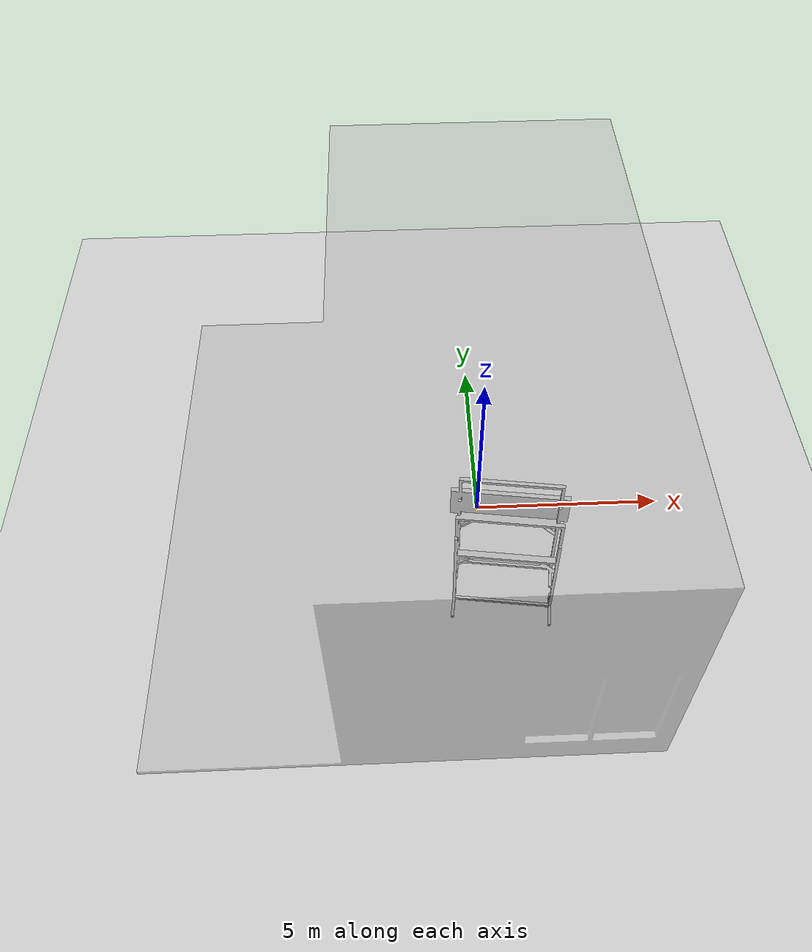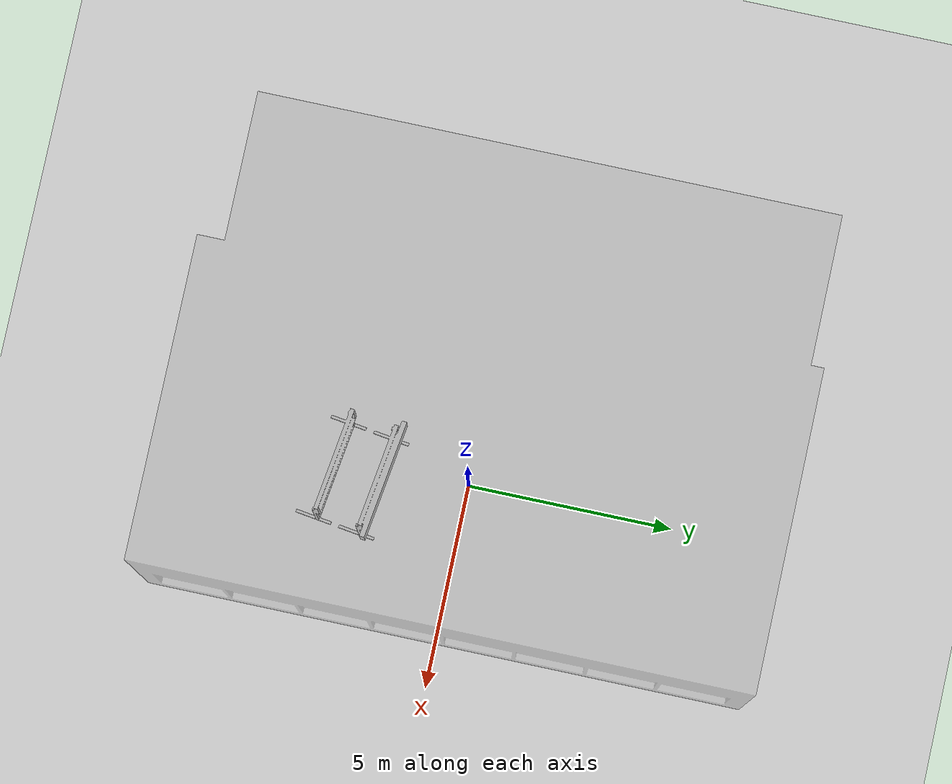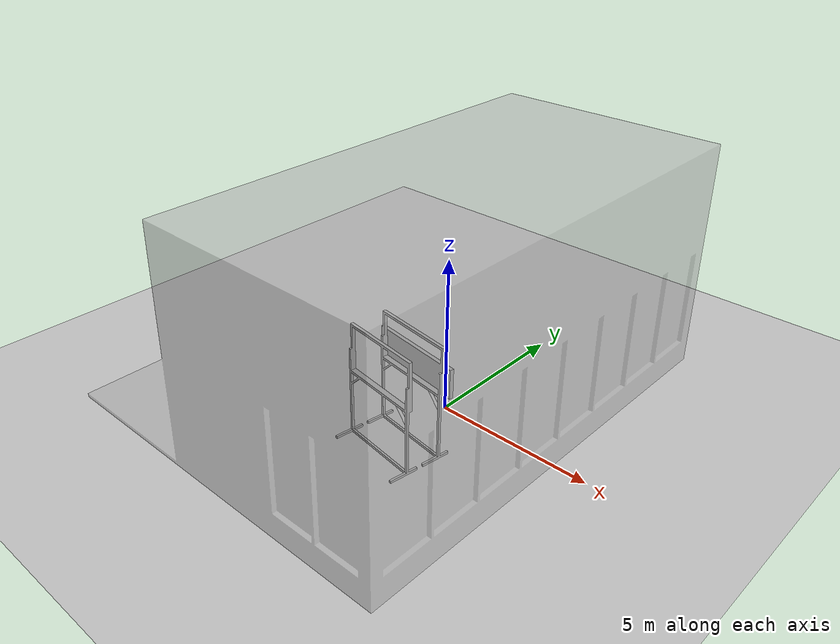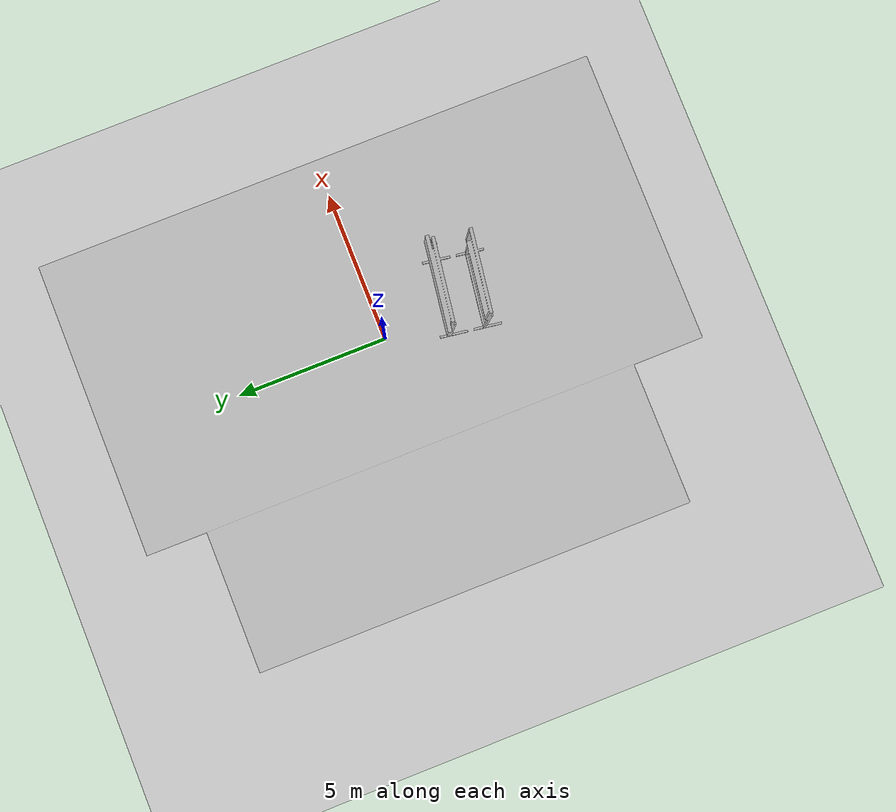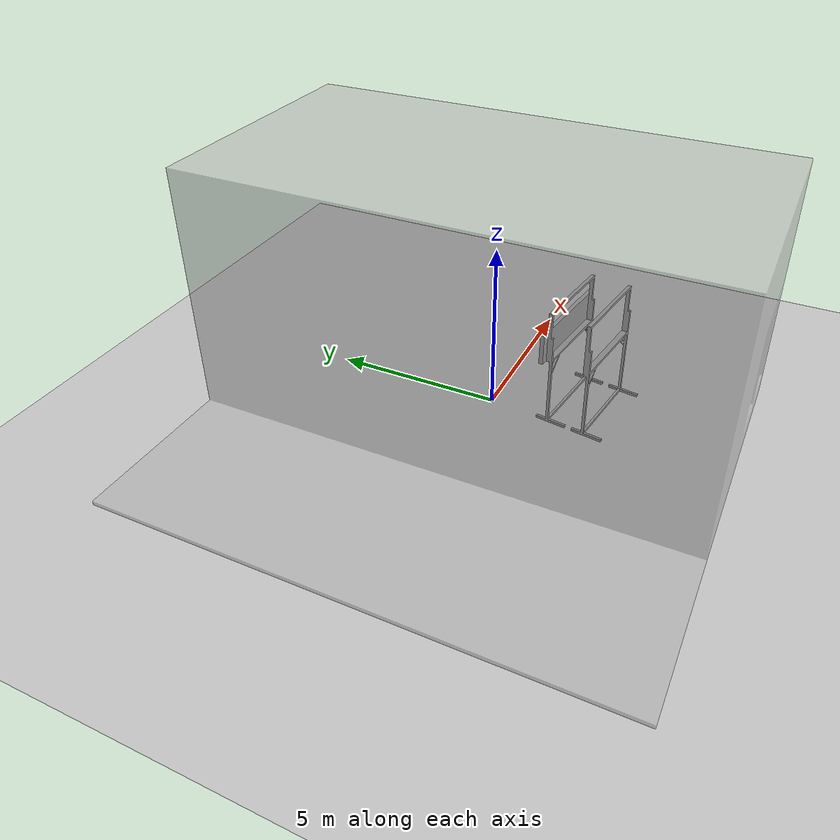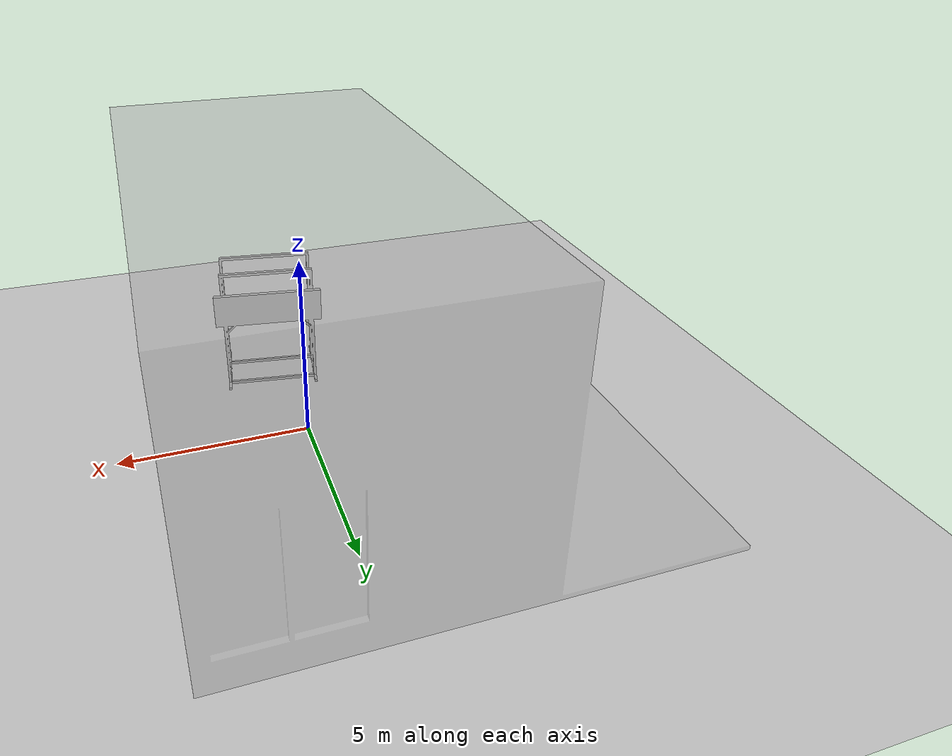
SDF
<?xml version="1.0" ?>
<sdf version="1.6">
  <world name="default">
    <!-- A global light source -->
    <include>
      <uri>model://sun</uri>
    </include>
    <include>
      <uri>model://ground_plane</uri>
    </include>
    <include>
      <uri>model://ARLarena</uri>
    </include>
    <spherical_coordinates>
      <surface_model>EARTH_WGS84</surface_model>
      <latitude_deg>51.4988</latitude_deg>
      <longitude_deg>-0.1749</longitude_deg>
      <elevation>50</elevation>
    </spherical_coordinates>
    <physics name='default_physics' default='0' type='ode'>
      <gravity>0 0 -9.8066</gravity>
      <ode>
        <solver>
          <type>quick</type>
          <iters>50</iters>
          <sor>1.3</sor>
          <use_dynamic_moi_rescaling>0</use_dynamic_moi_rescaling>
        </solver>
        <constraints>
          <cfm>0</cfm>
          <erp>0.2</erp>
          <contact_max_correcting_vel>100</contact_max_correcting_vel>
          <contact_surface_layer>0.001</contact_surface_layer>
        </constraints>
      </ode>
      <max_step_size>0.004</max_step_size>
      <real_time_factor>1</real_time_factor>
      <real_time_update_rate>250</real_time_update_rate>
      <magnetic_field>6.0e-6 2.3e-5 -4.2e-5</magnetic_field>
    </physics>
  </world>
</sdf>

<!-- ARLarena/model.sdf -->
<sdf version="1.5">
    <model name="ARLarena">
      <static>true</static>
      <link name="arena">
      <pose>2 -2 0.4 0 0 3</pose>
        <visual name="visual">
          <geometry>
            <mesh>
            <uri>model://ARLarena/meshes/FoamBoardNoHoles.stl</uri>
            <scale> 1 1 1 </scale>
            </mesh>
          </geometry>
        </visual>
        <collision name="collision">
          <geometry>
            <mesh>
            <uri>model://ARLarena/meshes/FoamBoardNoHoles.stl</uri>
            <scale> 1 1 1 </scale>
            </mesh>
          </geometry>
        </collision>
      </link>
      <static>true</static>
      <link name="board">
      <pose>0 0 0.1 0 0 0</pose>
        <visual name="visual">
          <geometry>
            <mesh>
            <uri>model://ARLarena/meshes/ARLarena.stl</uri>
            </mesh>
          </geometry>
          <transparency>0.5</transparency>
        </visual>
        <collision name="collision">
          <geometry>
            <mesh>
            <uri>model://ARLarena/meshes/ARLarena.stl</uri>
            </mesh>
          </geometry>
        </collision>
      </link>
    </model>
</sdf>
